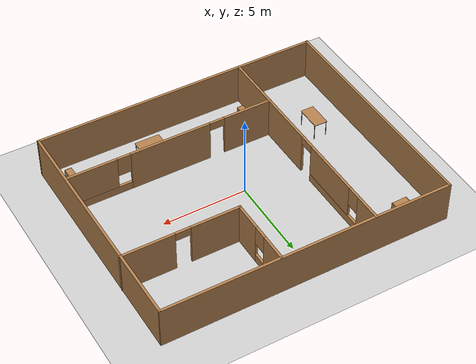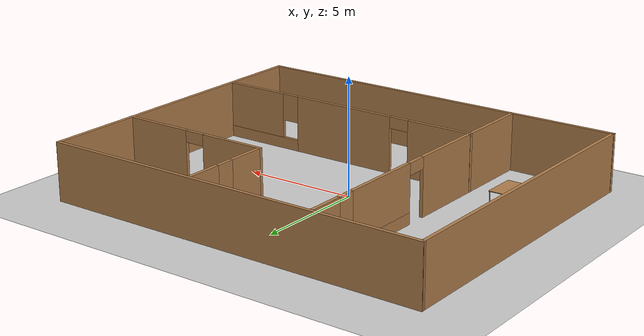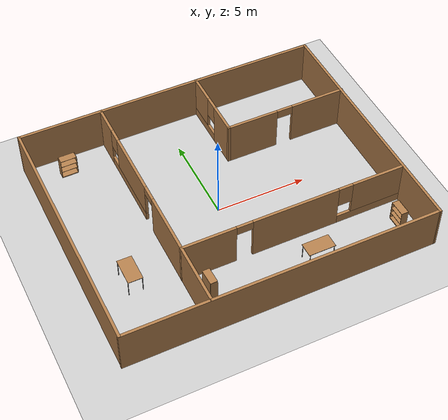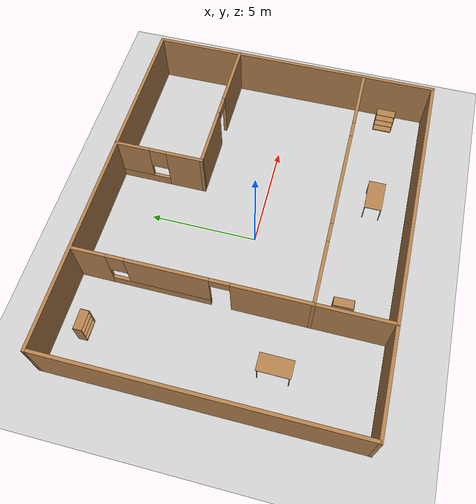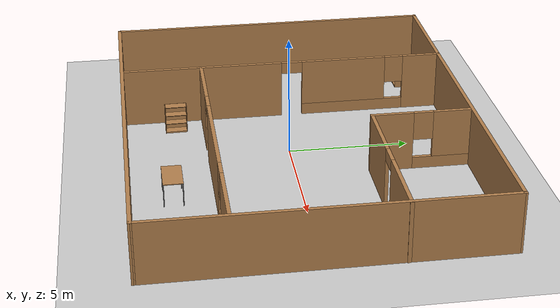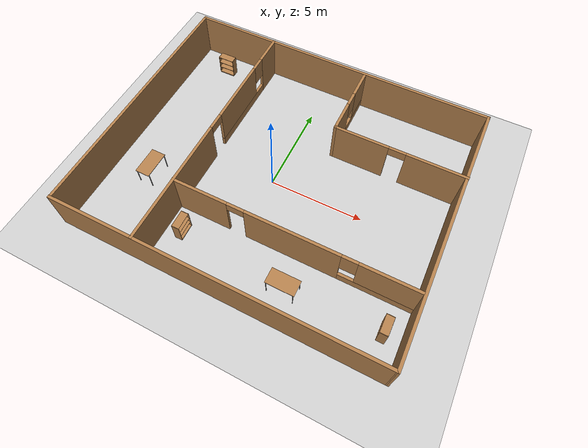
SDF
<sdf version="1.4">
 <world name="default">
  <include><uri>model://sun</uri></include>
  <include><uri>model://ground_plane</uri></include>
  <gravity>0 0 -9.8</gravity>
  <magnetic_field>6e-06 2.3e-05 -4.2e-05</magnetic_field>
  <atmosphere type="adiabatic"/>
  <physics type="ode">
   <max_step_size>0.001</max_step_size>
   <real_time_factor>1</real_time_factor>
   <real_time_update_rate>1000</real_time_update_rate>
  </physics>
  <scene><ambient>0.4 0.4 0.4 1</ambient><background>0.7 0.7 0.7 1</background><shadows>1</shadows></scene>
  <spherical_coordinates>
   <surface_model>EARTH_WGS84</surface_model>
   <latitude_deg>0</latitude_deg>
   <longitude_deg>0</longitude_deg>
   <elevation>0</elevation>
   <heading_deg>0</heading_deg>
  </spherical_coordinates>
  <model name="Class">
   <pose>0.381618 0.217526 0 0 -0 0</pose>
   <link name="Wall_12">
    <collision name="Wall_12_Collision">
     <geometry><box><size>14 0.15 2.5</size></box></geometry>
     <pose>0 0 1.25 0 -0 0</pose>
    </collision>
    <visual name="Wall_12_Visual">
     <pose>0 0 1.25 0 -0 0</pose>
     <geometry><box><size>14 0.15 2.5</size></box></geometry>
     <material>
      <script><uri>file://media/materials/scripts/gazebo.material</uri><name>Gazebo/Wood</name></script>
      <ambient>1 1 1 1</ambient>
     </material>
     <meta><layer>0</layer></meta>
    </visual>
    <pose>-8.54112 0.004765 0 0 -0 -1.5708</pose>
   </link>
   <link name="Wall_14">
    <collision name="Wall_14_Collision">
     <geometry><box><size>17.2148 0.15 2.5</size></box></geometry>
     <pose>0 0 1.25 0 -0 0</pose>
    </collision>
    <visual name="Wall_14_Visual">
     <pose>0 0 1.25 0 -0 0</pose>
     <geometry><box><size>17.2148 0.15 2.5</size></box></geometry>
     <material>
      <script><uri>file://media/materials/scripts/gazebo.material</uri><name>Gazebo/Wood</name></script>
      <ambient>1 1 1 1</ambient>
     </material>
     <meta><layer>0</layer></meta>
    </visual>
    <pose>-0.008709 6.93559 0 0 -0 -0.000665</pose>
   </link>
   <link name="Wall_15">
    <collision name="Wall_15_Collision">
     <geometry><box><size>14.0096 0.15 2.5</size></box></geometry>
     <pose>0 0 1.25 0 -0 0</pose>
    </collision>
    <visual name="Wall_15_Visual">
     <pose>0 0 1.25 0 -0 0</pose>
     <geometry><box><size>14.0096 0.15 2.5</size></box></geometry>
     <material>
      <script><uri>file://media/materials/scripts/gazebo.material</uri><name>Gazebo/Wood</name></script>
      <ambient>1 1 1 1</ambient>
     </material>
     <meta><layer>0</layer></meta>
    </visual>
    <pose>8.53544 -0.011384 0 0 -0 -1.5691</pose>
   </link>
   <link name="Wall_16">
    <collision name="Wall_16_Collision">
     <geometry><box><size>17.25 0.15 2.5</size></box></geometry>
     <pose>0 0 1.25 0 -0 0</pose>
    </collision>
    <visual name="Wall_16_Visual">
     <pose>0 0 1.25 0 -0 0</pose>
     <geometry><box><size>17.25 0.15 2.5</size></box></geometry>
     <material>
      <script><uri>file://media/materials/scripts/gazebo.material</uri><name>Gazebo/Wood</name></script>
      <ambient>1 1 1 1</ambient>
     </material>
     <meta><layer>0</layer></meta>
    </visual>
    <pose>-0.00282 -6.94119 0 0 -0 3.14159</pose>
   </link>
   <link name="Wall_18">
    <pose>-3.93699 -0.002974 0 0 -0 -1.5708</pose>
    <visual name="Wall_18_Visual_0">
     <pose>-6.1651 0 1.25 0 -0 0</pose>
     <geometry><box><size>1.66979 0.15 2.5</size></box></geometry>
     <material>
      <script><uri>file://media/materials/scripts/gazebo.material</uri><name>Gazebo/Wood</name></script>
      <ambient>1 1 1 1</ambient>
     </material>
     <meta><layer>0</layer></meta>
    </visual>
    <collision name="Wall_18_Collision_0">
     <geometry><box><size>1.66979 0.15 2.5</size></box></geometry>
     <pose>-6.1651 0 1.25 0 -0 0</pose>
    </collision>
    <visual name="Wall_18_Visual_1">
     <pose>3.5267 0 1.25 0 -0 0</pose>
     <geometry><box><size>6.94661 0.15 2.5</size></box></geometry>
     <material>
      <script><uri>file://media/materials/scripts/gazebo.material</uri><name>Gazebo/Wood</name></script>
      <ambient>1 1 1 1</ambient>
     </material>
     <meta><layer>0</layer></meta>
    </visual>
    <collision name="Wall_18_Collision_1">
     <geometry><box><size>6.94661 0.15 2.5</size></box></geometry>
     <pose>3.5267 0 1.25 0 -0 0</pose>
    </collision>
    <visual name="Wall_18_Visual_2">
     <pose>-3.08841 0 0.25 0 -0 0</pose>
     <geometry><box><size>4.4836 0.15 0.5</size></box></geometry>
     <material>
      <script><uri>file://media/materials/scripts/gazebo.material</uri><name>Gazebo/Wood</name></script>
      <ambient>1 1 1 1</ambient>
     </material>
     <meta><layer>0</layer></meta>
    </visual>
    <collision name="Wall_18_Collision_2">
     <geometry><box><size>4.4836 0.15 0.5</size></box></geometry>
     <pose>-3.08841 0 0.25 0 -0 0</pose>
    </collision>
    <visual name="Wall_18_Visual_3">
     <pose>-2.68841 0 1.5 0 -0 0</pose>
     <geometry><box><size>3.6836 0.15 2</size></box></geometry>
     <material>
      <script><uri>file://media/materials/scripts/gazebo.material</uri><name>Gazebo/Wood</name></script>
      <ambient>1 1 1 1</ambient>
     </material>
     <meta><layer>0</layer></meta>
    </visual>
    <collision name="Wall_18_Collision_3">
     <geometry><box><size>3.6836 0.15 2</size></box></geometry>
     <pose>-2.68841 0 1.5 0 -0 0</pose>
    </collision>
    <visual name="Wall_18_Visual_4">
     <pose>-4.93021 0 1.9 0 -0 0</pose>
     <geometry><box><size>0.8 0.15 1.2</size></box></geometry>
     <material>
      <script><uri>file://media/materials/scripts/gazebo.material</uri><name>Gazebo/Wood</name></script>
      <ambient>1 1 1 1</ambient>
     </material>
     <meta><layer>0</layer></meta>
    </visual>
    <collision name="Wall_18_Collision_4">
     <geometry><box><size>0.8 0.15 1.2</size></box></geometry>
     <pose>-4.93021 0 1.9 0 -0 0</pose>
    </collision>
    <visual name="Wall_18_Visual_5">
     <pose>-0.39661 0 2.25 0 -0 0</pose>
     <geometry><box><size>0.9 0.15 0.5</size></box></geometry>
     <material>
      <script><uri>file://media/materials/scripts/gazebo.material</uri><name>Gazebo/Wood</name></script>
      <ambient>1 1 1 1</ambient>
     </material>
     <meta><layer>0</layer></meta>
    </visual>
    <collision name="Wall_18_Collision_5">
     <geometry><box><size>0.9 0.15 0.5</size></box></geometry>
     <pose>-0.39661 0 2.25 0 -0 0</pose>
    </collision>
   </link>
   <link name="Wall_20">
    <pose>5.12782 2.82354 0 0 -0 3.14159</pose>
    <visual name="Wall_20_Visual_0">
     <pose>-1.92806 0 1.25 0 -0 0</pose>
     <geometry><box><size>3.14389 0.15 2.5</size></box></geometry>
     <material>
      <script><uri>file://media/materials/scripts/gazebo.material</uri><name>Gazebo/Wood</name></script>
      <ambient>1 1 1 1</ambient>
     </material>
     <meta><layer>0</layer></meta>
    </visual>
    <collision name="Wall_20_Collision_0">
     <geometry><box><size>3.14389 0.15 2.5</size></box></geometry>
     <pose>-1.92806 0 1.25 0 -0 0</pose>
    </collision>
    <visual name="Wall_20_Visual_1">
     <pose>2.02194 0 1.25 0 -0 0</pose>
     <geometry><box><size>2.95611 0.15 2.5</size></box></geometry>
     <material>
      <script><uri>file://media/materials/scripts/gazebo.material</uri><name>Gazebo/Wood</name></script>
      <ambient>1 1 1 1</ambient>
     </material>
     <meta><layer>0</layer></meta>
    </visual>
    <collision name="Wall_20_Collision_1">
     <geometry><box><size>2.95611 0.15 2.5</size></box></geometry>
     <pose>2.02194 0 1.25 0 -0 0</pose>
    </collision>
    <visual name="Wall_20_Visual_2">
     <pose>0.093886 0 2.25 0 -0 0</pose>
     <geometry><box><size>0.9 0.15 0.5</size></box></geometry>
     <material>
      <script><uri>file://media/materials/scripts/gazebo.material</uri><name>Gazebo/Wood</name></script>
      <ambient>1 1 1 1</ambient>
     </material>
     <meta><layer>0</layer></meta>
    </visual>
    <collision name="Wall_20_Collision_2">
     <geometry><box><size>0.9 0.15 0.5</size></box></geometry>
     <pose>0.093886 0 2.25 0 -0 0</pose>
    </collision>
   </link>
   <link name="Wall_21">
    <pose>1.70282 4.87354 0 0 -0 1.5708</pose>
    <visual name="Wall_21_Visual_0">
     <pose>-1.24217 0 1.25 0 -0 0</pose>
     <geometry><box><size>1.76566 0.15 2.5</size></box></geometry>
     <material>
      <script><uri>file://media/materials/scripts/gazebo.material</uri><name>Gazebo/Wood</name></script>
      <ambient>1 1 1 1</ambient>
     </material>
     <meta><layer>0</layer></meta>
    </visual>
    <collision name="Wall_21_Collision_0">
     <geometry><box><size>1.76566 0.15 2.5</size></box></geometry>
     <pose>-1.24217 0 1.25 0 -0 0</pose>
    </collision>
    <visual name="Wall_21_Visual_1">
     <pose>0.882828 0 0.25 0 -0 0</pose>
     <geometry><box><size>2.48434 0.15 0.5</size></box></geometry>
     <material>
      <script><uri>file://media/materials/scripts/gazebo.material</uri><name>Gazebo/Wood</name></script>
      <ambient>1 1 1 1</ambient>
     </material>
     <meta><layer>0</layer></meta>
    </visual>
    <collision name="Wall_21_Collision_1">
     <geometry><box><size>2.48434 0.15 0.5</size></box></geometry>
     <pose>0.882828 0 0.25 0 -0 0</pose>
    </collision>
    <visual name="Wall_21_Visual_2">
     <pose>1.28283 0 1.5 0 -0 0</pose>
     <geometry><box><size>1.68434 0.15 2</size></box></geometry>
     <material>
      <script><uri>file://media/materials/scripts/gazebo.material</uri><name>Gazebo/Wood</name></script>
      <ambient>1 1 1 1</ambient>
     </material>
     <meta><layer>0</layer></meta>
    </visual>
    <collision name="Wall_21_Collision_2">
     <geometry><box><size>1.68434 0.15 2</size></box></geometry>
     <pose>1.28283 0 1.5 0 -0 0</pose>
    </collision>
    <visual name="Wall_21_Visual_3">
     <pose>0.040657 0 1.9 0 -0 0</pose>
     <geometry><box><size>0.8 0.15 1.2</size></box></geometry>
     <material>
      <script><uri>file://media/materials/scripts/gazebo.material</uri><name>Gazebo/Wood</name></script>
      <ambient>1 1 1 1</ambient>
     </material>
     <meta><layer>0</layer></meta>
    </visual>
    <collision name="Wall_21_Collision_3">
     <geometry><box><size>0.8 0.15 1.2</size></box></geometry>
     <pose>0.040657 0 1.9 0 -0 0</pose>
    </collision>
   </link>
   <link name="Wall_23">
    <pose>2.23129 -3.54651 0 0 -0 0</pose>
    <visual name="Wall_23_Visual_0">
     <pose>-4.74148 0 1.25 0 -0 0</pose>
     <geometry><box><size>3.01705 0.15 2.5</size></box></geometry>
     <material>
      <script><uri>file://media/materials/scripts/gazebo.material</uri><name>Gazebo/Wood</name></script>
      <ambient>1 1 1 1</ambient>
     </material>
     <meta><layer>0</layer></meta>
    </visual>
    <collision name="Wall_23_Collision_0">
     <geometry><box><size>3.01705 0.15 2.5</size></box></geometry>
     <pose>-4.74148 0 1.25 0 -0 0</pose>
    </collision>
    <visual name="Wall_23_Visual_1">
     <pose>0.091527 0 1.25 0 -0 0</pose>
     <geometry><box><size>4.84896 0.15 2.5</size></box></geometry>
     <material>
      <script><uri>file://media/materials/scripts/gazebo.material</uri><name>Gazebo/Wood</name></script>
      <ambient>1 1 1 1</ambient>
     </material>
     <meta><layer>0</layer></meta>
    </visual>
    <collision name="Wall_23_Collision_1">
     <geometry><box><size>4.84896 0.15 2.5</size></box></geometry>
     <pose>0.091527 0 1.25 0 -0 0</pose>
    </collision>
    <visual name="Wall_23_Visual_2">
     <pose>4.383 0 0.25 0 -0 0</pose>
     <geometry><box><size>3.73399 0.15 0.5</size></box></geometry>
     <material>
      <script><uri>file://media/materials/scripts/gazebo.material</uri><name>Gazebo/Wood</name></script>
      <ambient>1 1 1 1</ambient>
     </material>
     <meta><layer>0</layer></meta>
    </visual>
    <collision name="Wall_23_Collision_2">
     <geometry><box><size>3.73399 0.15 0.5</size></box></geometry>
     <pose>4.383 0 0.25 0 -0 0</pose>
    </collision>
    <visual name="Wall_23_Visual_3">
     <pose>4.783 0 1.5 0 -0 0</pose>
     <geometry><box><size>2.93399 0.15 2</size></box></geometry>
     <material>
      <script><uri>file://media/materials/scripts/gazebo.material</uri><name>Gazebo/Wood</name></script>
      <ambient>1 1 1 1</ambient>
     </material>
     <meta><layer>0</layer></meta>
    </visual>
    <collision name="Wall_23_Collision_3">
     <geometry><box><size>2.93399 0.15 2</size></box></geometry>
     <pose>4.783 0 1.5 0 -0 0</pose>
    </collision>
    <visual name="Wall_23_Visual_4">
     <pose>2.91601 0 1.9 0 -0 0</pose>
     <geometry><box><size>0.8 0.15 1.2</size></box></geometry>
     <material>
      <script><uri>file://media/materials/scripts/gazebo.material</uri><name>Gazebo/Wood</name></script>
      <ambient>1 1 1 1</ambient>
     </material>
     <meta><layer>0</layer></meta>
    </visual>
    <collision name="Wall_23_Collision_4">
     <geometry><box><size>0.8 0.15 1.2</size></box></geometry>
     <pose>2.91601 0 1.9 0 -0 0</pose>
    </collision>
    <visual name="Wall_23_Visual_5">
     <pose>-2.78295 0 2.25 0 -0 0</pose>
     <geometry><box><size>0.9 0.15 0.5</size></box></geometry>
     <material>
      <script><uri>file://media/materials/scripts/gazebo.material</uri><name>Gazebo/Wood</name></script>
      <ambient>1 1 1 1</ambient>
     </material>
     <meta><layer>0</layer></meta>
    </visual>
    <collision name="Wall_23_Collision_5">
     <geometry><box><size>0.9 0.15 0.5</size></box></geometry>
     <pose>-2.78295 0 2.25 0 -0 0</pose>
    </collision>
   </link>
   <static>1</static>
  </model>
  <model name="bookshelf">
   <static>1</static>
   <link name="link">
    <inertial><mass>1</mass></inertial>
    <collision name="back">
     <pose>0 0.005 0.6 0 -0 0</pose>
     <geometry><box><size>0.9 0.01 1.2</size></box></geometry>
    </collision>
    <visual name="visual1">
     <pose>0 0.005 0.6 0 -0 0</pose>
     <geometry><box><size>0.9 0.01 1.2</size></box></geometry>
     <material>
      <script><uri>file://media/materials/scripts/gazebo.material</uri><name>Gazebo/Wood</name></script>
     </material>
    </visual>
    <collision name="left_side">
     <pose>0.45 -0.195 0.6 0 -0 0</pose>
     <geometry><box><size>0.02 0.4 1.2</size></box></geometry>
    </collision>
    <visual name="visual2">
     <pose>0.45 -0.195 0.6 0 -0 0</pose>
     <geometry><box><size>0.02 0.4 1.2</size></box></geometry>
     <material>
      <script><uri>file://media/materials/scripts/gazebo.material</uri><name>Gazebo/Wood</name></script>
     </material>
    </visual>
    <collision name="right_side">
     <pose>-0.45 -0.195 0.6 0 -0 0</pose>
     <geometry><box><size>0.02 0.4 1.2</size></box></geometry>
    </collision>
    <visual name="visual3">
     <pose>-0.45 -0.195 0.6 0 -0 0</pose>
     <geometry><box><size>0.02 0.4 1.2</size></box></geometry>
     <material>
      <script><uri>file://media/materials/scripts/gazebo.material</uri><name>Gazebo/Wood</name></script>
     </material>
    </visual>
    <collision name="bottom">
     <pose>0 -0.195 0.03 0 -0 0</pose>
     <geometry><box><size>0.88 0.4 0.06</size></box></geometry>
    </collision>
    <visual name="visual4">
     <pose>0 -0.195 0.03 0 -0 0</pose>
     <geometry><box><size>0.88 0.4 0.06</size></box></geometry>
     <material>
      <script><uri>file://media/materials/scripts/gazebo.material</uri><name>Gazebo/Wood</name></script>
     </material>
    </visual>
    <collision name="top">
     <pose>0 -0.195 1.19 0 -0 0</pose>
     <geometry><box><size>0.88 0.4 0.02</size></box></geometry>
    </collision>
    <visual name="visual5">
     <pose>0 -0.195 1.19 0 -0 0</pose>
     <geometry><box><size>0.88 0.4 0.02</size></box></geometry>
     <material>
      <script><uri>file://media/materials/scripts/gazebo.material</uri><name>Gazebo/Wood</name></script>
     </material>
    </visual>
    <collision name="low_shelf">
     <pose>0 -0.195 0.43 0 -0 0</pose>
     <geometry><box><size>0.88 0.4 0.02</size></box></geometry>
    </collision>
    <visual name="visual6">
     <pose>0 -0.195 0.43 0 -0 0</pose>
     <geometry><box><size>0.88 0.4 0.02</size></box></geometry>
     <material>
      <script><uri>file://media/materials/scripts/gazebo.material</uri><name>Gazebo/Wood</name></script>
     </material>
    </visual>
    <collision name="high_shelf">
     <pose>0 -0.195 0.8 0 -0 0</pose>
     <geometry><box><size>0.88 0.4 0.02</size></box></geometry>
    </collision>
    <visual name="visual7">
     <pose>0 -0.195 0.8 0 -0 0</pose>
     <geometry><box><size>0.88 0.4 0.02</size></box></geometry>
     <material>
      <script><uri>file://media/materials/scripts/gazebo.material</uri><name>Gazebo/Wood</name></script>
     </material>
    </visual>
   </link>
   <pose>8.20095 -4.78594 0 0 0 -1.56483</pose>
  </model>
  <model name="bookshelf_clone">
   <static>1</static>
   <link name="link">
    <inertial><mass>1</mass></inertial>
    <collision name="back">
     <pose>0 0.005 0.6 0 -0 0</pose>
     <geometry><box><size>0.9 0.01 1.2</size></box></geometry>
    </collision>
    <visual name="visual1">
     <pose>0 0.005 0.6 0 -0 0</pose>
     <geometry><box><size>0.9 0.01 1.2</size></box></geometry>
     <material>
      <script><uri>file://media/materials/scripts/gazebo.material</uri><name>Gazebo/Wood</name></script>
     </material>
    </visual>
    <collision name="left_side">
     <pose>0.45 -0.195 0.6 0 -0 0</pose>
     <geometry><box><size>0.02 0.4 1.2</size></box></geometry>
    </collision>
    <visual name="visual2">
     <pose>0.45 -0.195 0.6 0 -0 0</pose>
     <geometry><box><size>0.02 0.4 1.2</size></box></geometry>
     <material>
      <script><uri>file://media/materials/scripts/gazebo.material</uri><name>Gazebo/Wood</name></script>
     </material>
    </visual>
    <collision name="right_side">
     <pose>-0.45 -0.195 0.6 0 -0 0</pose>
     <geometry><box><size>0.02 0.4 1.2</size></box></geometry>
    </collision>
    <visual name="visual3">
     <pose>-0.45 -0.195 0.6 0 -0 0</pose>
     <geometry><box><size>0.02 0.4 1.2</size></box></geometry>
     <material>
      <script><uri>file://media/materials/scripts/gazebo.material</uri><name>Gazebo/Wood</name></script>
     </material>
    </visual>
    <collision name="bottom">
     <pose>0 -0.195 0.03 0 -0 0</pose>
     <geometry><box><size>0.88 0.4 0.06</size></box></geometry>
    </collision>
    <visual name="visual4">
     <pose>0 -0.195 0.03 0 -0 0</pose>
     <geometry><box><size>0.88 0.4 0.06</size></box></geometry>
     <material>
      <script><uri>file://media/materials/scripts/gazebo.material</uri><name>Gazebo/Wood</name></script>
     </material>
    </visual>
    <collision name="top">
     <pose>0 -0.195 1.19 0 -0 0</pose>
     <geometry><box><size>0.88 0.4 0.02</size></box></geometry>
    </collision>
    <visual name="visual5">
     <pose>0 -0.195 1.19 0 -0 0</pose>
     <geometry><box><size>0.88 0.4 0.02</size></box></geometry>
     <material>
      <script><uri>file://media/materials/scripts/gazebo.material</uri><name>Gazebo/Wood</name></script>
     </material>
    </visual>
    <collision name="low_shelf">
     <pose>0 -0.195 0.43 0 -0 0</pose>
     <geometry><box><size>0.88 0.4 0.02</size></box></geometry>
    </collision>
    <visual name="visual6">
     <pose>0 -0.195 0.43 0 -0 0</pose>
     <geometry><box><size>0.88 0.4 0.02</size></box></geometry>
     <material>
      <script><uri>file://media/materials/scripts/gazebo.material</uri><name>Gazebo/Wood</name></script>
     </material>
    </visual>
    <collision name="high_shelf">
     <pose>0 -0.195 0.8 0 -0 0</pose>
     <geometry><box><size>0.88 0.4 0.02</size></box></geometry>
    </collision>
    <visual name="visual7">
     <pose>0 -0.195 0.8 0 -0 0</pose>
     <geometry><box><size>0.88 0.4 0.02</size></box></geometry>
     <material>
      <script><uri>file://media/materials/scripts/gazebo.material</uri><name>Gazebo/Wood</name></script>
     </material>
    </visual>
   </link>
   <pose>-2.8294 -4.54578 0 0 -0 1.59585</pose>
  </model>
  <model name="table">
   <static>1</static>
   <link name="link">
    <collision name="surface">
     <pose>0 0 1 0 -0 0</pose>
     <geometry><box><size>1.5 0.8 0.03</size></box></geometry>
     <surface><friction><ode><mu>0.6</mu><mu2>0.6</mu2></ode></friction></surface>
    </collision>
    <visual name="visual1">
     <pose>0 0 1 0 -0 0</pose>
     <geometry><box><size>1.5 0.8 0.03</size></box></geometry>
     <material>
      <script><uri>file://media/materials/scripts/gazebo.material</uri><name>Gazebo/Wood</name></script>
     </material>
    </visual>
    <collision name="front_left_leg">
     <pose>0.68 0.38 0.5 0 -0 0</pose>
     <geometry><cylinder><radius>0.02</radius><length>1</length></cylinder></geometry>
    </collision>
    <visual name="front_left_leg">
     <pose>0.68 0.38 0.5 0 -0 0</pose>
     <geometry><cylinder><radius>0.02</radius><length>1</length></cylinder></geometry>
     <material>
      <script><uri>file://media/materials/scripts/gazebo.material</uri><name>Gazebo/Grey</name></script>
     </material>
    </visual>
    <collision name="front_right_leg">
     <pose>0.68 -0.38 0.5 0 -0 0</pose>
     <geometry><cylinder><radius>0.02</radius><length>1</length></cylinder></geometry>
    </collision>
    <visual name="front_right_leg">
     <pose>0.68 -0.38 0.5 0 -0 0</pose>
     <geometry><cylinder><radius>0.02</radius><length>1</length></cylinder></geometry>
     <material>
      <script><uri>file://media/materials/scripts/gazebo.material</uri><name>Gazebo/Grey</name></script>
     </material>
    </visual>
    <collision name="back_right_leg">
     <pose>-0.68 -0.38 0.5 0 -0 0</pose>
     <geometry><cylinder><radius>0.02</radius><length>1</length></cylinder></geometry>
    </collision>
    <visual name="back_right_leg">
     <pose>-0.68 -0.38 0.5 0 -0 0</pose>
     <geometry><cylinder><radius>0.02</radius><length>1</length></cylinder></geometry>
     <material>
      <script><uri>file://media/materials/scripts/gazebo.material</uri><name>Gazebo/Grey</name></script>
     </material>
    </visual>
    <collision name="back_left_leg">
     <pose>-0.68 0.38 0.5 0 -0 0</pose>
     <geometry><cylinder><radius>0.02</radius><length>1</length></cylinder></geometry>
    </collision>
    <visual name="back_left_leg">
     <pose>-0.68 0.38 0.5 0 -0 0</pose>
     <geometry><cylinder><radius>0.02</radius><length>1</length></cylinder></geometry>
     <material>
      <script><uri>file://media/materials/scripts/gazebo.material</uri><name>Gazebo/Grey</name></script>
     </material>
    </visual>
   </link>
   <pose>3.13569 -5.02158 0 0 -0 0</pose>
  </model>
  <model name="table_clone">
   <static>1</static>
   <link name="link">
    <collision name="surface">
     <pose>0 0 1 0 -0 0</pose>
     <geometry><box><size>1.5 0.8 0.03</size></box></geometry>
     <surface><friction><ode><mu>0.6</mu><mu2>0.6</mu2></ode></friction></surface>
    </collision>
    <visual name="visual1">
     <pose>0 0 1 0 -0 0</pose>
     <geometry><box><size>1.5 0.8 0.03</size></box></geometry>
     <material>
      <script><uri>file://media/materials/scripts/gazebo.material</uri><name>Gazebo/Wood</name></script>
     </material>
    </visual>
    <collision name="front_left_leg">
     <pose>0.68 0.38 0.5 0 -0 0</pose>
     <geometry><cylinder><radius>0.02</radius><length>1</length></cylinder></geometry>
    </collision>
    <visual name="front_left_leg">
     <pose>0.68 0.38 0.5 0 -0 0</pose>
     <geometry><cylinder><radius>0.02</radius><length>1</length></cylinder></geometry>
     <material>
      <script><uri>file://media/materials/scripts/gazebo.material</uri><name>Gazebo/Grey</name></script>
     </material>
    </visual>
    <collision name="front_right_leg">
     <pose>0.68 -0.38 0.5 0 -0 0</pose>
     <geometry><cylinder><radius>0.02</radius><length>1</length></cylinder></geometry>
    </collision>
    <visual name="front_right_leg">
     <pose>0.68 -0.38 0.5 0 -0 0</pose>
     <geometry><cylinder><radius>0.02</radius><length>1</length></cylinder></geometry>
     <material>
      <script><uri>file://media/materials/scripts/gazebo.material</uri><name>Gazebo/Grey</name></script>
     </material>
    </visual>
    <collision name="back_right_leg">
     <pose>-0.68 -0.38 0.5 0 -0 0</pose>
     <geometry><cylinder><radius>0.02</radius><length>1</length></cylinder></geometry>
    </collision>
    <visual name="back_right_leg">
     <pose>-0.68 -0.38 0.5 0 -0 0</pose>
     <geometry><cylinder><radius>0.02</radius><length>1</length></cylinder></geometry>
     <material>
      <script><uri>file://media/materials/scripts/gazebo.material</uri><name>Gazebo/Grey</name></script>
     </material>
    </visual>
    <collision name="back_left_leg">
     <pose>-0.68 0.38 0.5 0 -0 0</pose>
     <geometry><cylinder><radius>0.02</radius><length>1</length></cylinder></geometry>
    </collision>
    <visual name="back_left_leg">
     <pose>-0.68 0.38 0.5 0 -0 0</pose>
     <geometry><cylinder><radius>0.02</radius><length>1</length></cylinder></geometry>
     <material>
      <script><uri>file://media/materials/scripts/gazebo.material</uri><name>Gazebo/Grey</name></script>
     </material>
    </visual>
   </link>
   <pose>-5.91857 -2.33828 0 0 -0 1.56645</pose>
  </model>
  <model name="bookshelf_clone_clone">
   <static>1</static>
   <link name="link">
    <inertial><mass>1</mass></inertial>
    <collision name="back">
     <pose>0 0.005 0.6 0 -0 0</pose>
     <geometry><box><size>0.9 0.01 1.2</size></box></geometry>
    </collision>
    <visual name="visual1">
     <pose>0 0.005 0.6 0 -0 0</pose>
     <geometry><box><size>0.9 0.01 1.2</size></box></geometry>
     <material>
      <script><uri>file://media/materials/scripts/gazebo.material</uri><name>Gazebo/Wood</name></script>
     </material>
    </visual>
    <collision name="left_side">
     <pose>0.45 -0.195 0.6 0 -0 0</pose>
     <geometry><box><size>0.02 0.4 1.2</size></box></geometry>
    </collision>
    <visual name="visual2">
     <pose>0.45 -0.195 0.6 0 -0 0</pose>
     <geometry><box><size>0.02 0.4 1.2</size></box></geometry>
     <material>
      <script><uri>file://media/materials/scripts/gazebo.material</uri><name>Gazebo/Wood</name></script>
     </material>
    </visual>
    <collision name="right_side">
     <pose>-0.45 -0.195 0.6 0 -0 0</pose>
     <geometry><box><size>0.02 0.4 1.2</size></box></geometry>
    </collision>
    <visual name="visual3">
     <pose>-0.45 -0.195 0.6 0 -0 0</pose>
     <geometry><box><size>0.02 0.4 1.2</size></box></geometry>
     <material>
      <script><uri>file://media/materials/scripts/gazebo.material</uri><name>Gazebo/Wood</name></script>
     </material>
    </visual>
    <collision name="bottom">
     <pose>0 -0.195 0.03 0 -0 0</pose>
     <geometry><box><size>0.88 0.4 0.06</size></box></geometry>
    </collision>
    <visual name="visual4">
     <pose>0 -0.195 0.03 0 -0 0</pose>
     <geometry><box><size>0.88 0.4 0.06</size></box></geometry>
     <material>
      <script><uri>file://media/materials/scripts/gazebo.material</uri><name>Gazebo/Wood</name></script>
     </material>
    </visual>
    <collision name="top">
     <pose>0 -0.195 1.19 0 -0 0</pose>
     <geometry><box><size>0.88 0.4 0.02</size></box></geometry>
    </collision>
    <visual name="visual5">
     <pose>0 -0.195 1.19 0 -0 0</pose>
     <geometry><box><size>0.88 0.4 0.02</size></box></geometry>
     <material>
      <script><uri>file://media/materials/scripts/gazebo.material</uri><name>Gazebo/Wood</name></script>
     </material>
    </visual>
    <collision name="low_shelf">
     <pose>0 -0.195 0.43 0 -0 0</pose>
     <geometry><box><size>0.88 0.4 0.02</size></box></geometry>
    </collision>
    <visual name="visual6">
     <pose>0 -0.195 0.43 0 -0 0</pose>
     <geometry><box><size>0.88 0.4 0.02</size></box></geometry>
     <material>
      <script><uri>file://media/materials/scripts/gazebo.material</uri><name>Gazebo/Wood</name></script>
     </material>
    </visual>
    <collision name="high_shelf">
     <pose>0 -0.195 0.8 0 -0 0</pose>
     <geometry><box><size>0.88 0.4 0.02</size></box></geometry>
    </collision>
    <visual name="visual7">
     <pose>0 -0.195 0.8 0 -0 0</pose>
     <geometry><box><size>0.88 0.4 0.02</size></box></geometry>
     <material>
      <script><uri>file://media/materials/scripts/gazebo.material</uri><name>Gazebo/Wood</name></script>
     </material>
    </visual>
   </link>
   <pose>-6.07283 6.13619 0 0 -0 0.011352</pose>
  </model>
 </world>
</sdf>
